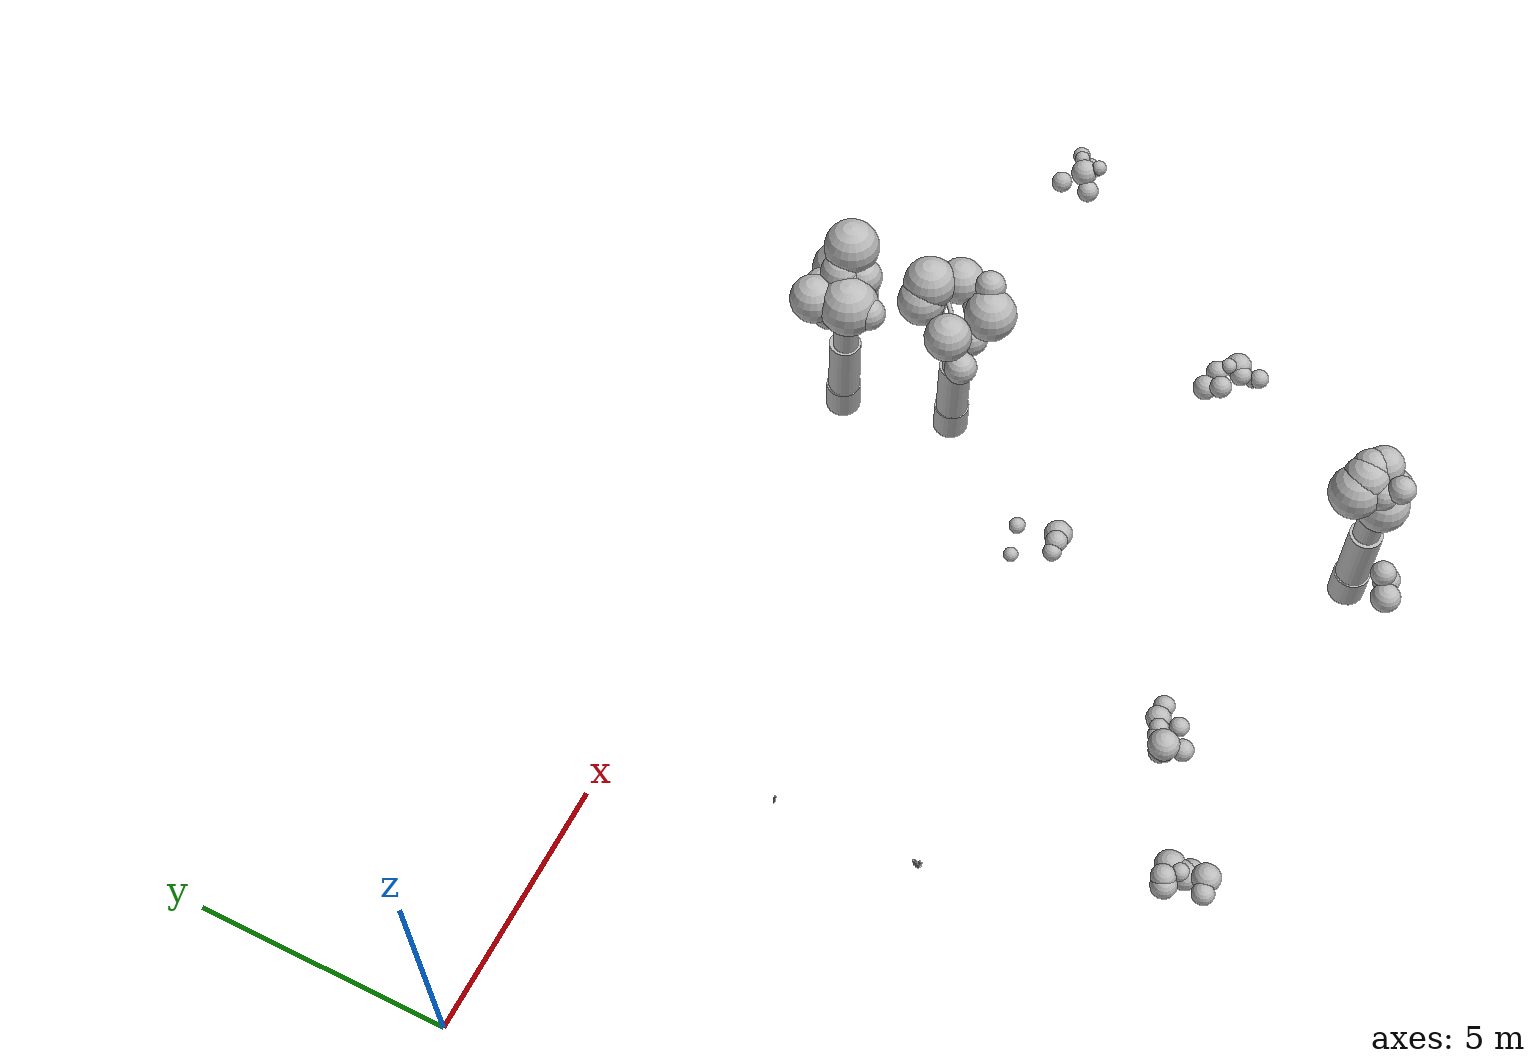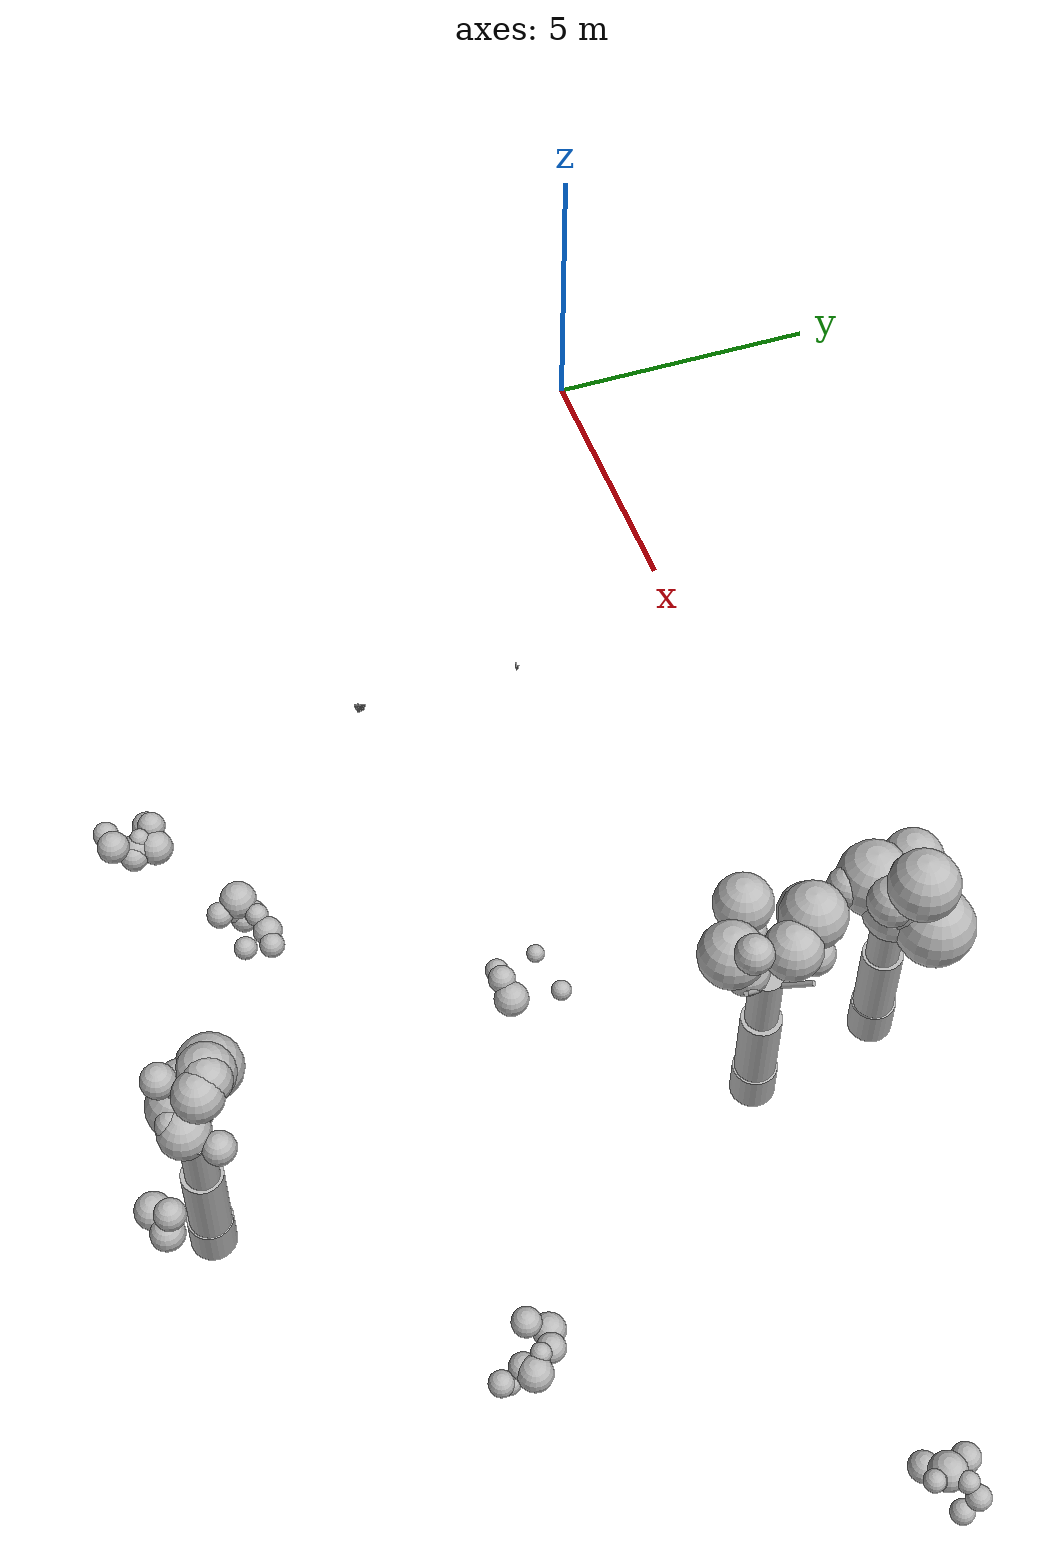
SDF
<sdf version="1.6">
 <world name="default">
  <model name="bush_13">
   <static>true</static>
   <pose>15.1162 -0.2985 0 0 0 0</pose>
   <link name="trunk">
    <pose>0 0 1.5000 0 0 0</pose>
    <collision name="trunk_c">
     <geometry><cylinder><radius>0.3500</radius><length>3.0000</length></cylinder></geometry>
    </collision>
   </link>
   <link name="trunk_v0">
    <pose>0.0002 -0.0012 0.3100 0 0 0</pose>
    <visual name="trunk_v0_v">
     <geometry><cylinder><radius>0.3448</radius><length>0.6448</length></cylinder></geometry>
     <material>
      <script>
       <uri>model://bushfire/materials/scripts</uri>
       <uri>model://bushfire/materials/textures</uri>
       <name>Bushfire/CharBark</name>
      </script>
     </material>
    </visual>
   </link>
   <link name="trunk_v1">
    <pose>0.0015 -0.0085 1.2700 0 0 0</pose>
    <visual name="trunk_v1_v">
     <geometry><cylinder><radius>0.3150</radius><length>1.3520</length></cylinder></geometry>
     <material>
      <script>
       <uri>model://bushfire/materials/scripts</uri>
       <uri>model://bushfire/materials/textures</uri>
       <name>Bushfire/BarkSmooth</name>
      </script>
     </material>
    </visual>
   </link>
   <link name="trunk_v2">
    <pose>0.0038 -0.0215 2.4600 0 0 0</pose>
    <visual name="trunk_v2_v">
     <geometry><cylinder><radius>0.2520</radius><length>1.1232</length></cylinder></geometry>
     <material>
      <script>
       <uri>model://bushfire/materials/scripts</uri>
       <uri>model://bushfire/materials/textures</uri>
       <name>Bushfire/BarkSmooth</name>
      </script>
     </material>
    </visual>
   </link>
   <link name="branch0">
    <pose>-0.0726 0.1679 2.8235 0 0.6618 1.9788</pose>
    <visual name="branch0_v">
     <geometry><cylinder><radius>0.0363</radius><length>0.5955</length></cylinder></geometry>
     <material>
      <script>
       <uri>model://bushfire/materials/scripts</uri>
       <uri>model://bushfire/materials/textures</uri>
       <name>Bushfire/BarkSmooth</name>
      </script>
     </material>
    </visual>
   </link>
   <link name="branch1">
    <pose>-0.0848 -0.1940 3.0970 0 0.5664 4.3003</pose>
    <visual name="branch1_v">
     <geometry><cylinder><radius>0.0481</radius><length>0.7893</length></cylinder></geometry>
     <material>
      <script>
       <uri>model://bushfire/materials/scripts</uri>
       <uri>model://bushfire/materials/textures</uri>
       <name>Bushfire/BarkSmooth</name>
      </script>
     </material>
    </visual>
   </link>
   <link name="branch2">
    <pose>0.2132 0.0540 3.0831 0 0.5614 6.5312</pose>
    <visual name="branch2_v">
     <geometry><cylinder><radius>0.0449</radius><length>0.8262</length></cylinder></geometry>
     <material>
      <script>
       <uri>model://bushfire/materials/scripts</uri>
       <uri>model://bushfire/materials/textures</uri>
       <name>Bushfire/BarkSmooth</name>
      </script>
     </material>
    </visual>
   </link>
   <link name="foliage0">
    <pose>-0.1957 0.2616 2.9842 0 0 0</pose>
    <visual name="foliage0_v">
     <geometry><sphere><radius>0.3337</radius></sphere></geometry>
     <material>
      <script>
       <uri>model://bushfire/materials/scripts</uri>
       <uri>model://bushfire/materials/textures</uri>
       <name>Bushfire/Foliage2</name>
      </script>
     </material>
    </visual>
   </link>
   <link name="foliage1">
    <pose>0.0440 -0.1399 3.5114 0 0 0</pose>
    <visual name="foliage1_v">
     <geometry><sphere><radius>0.2488</radius></sphere></geometry>
     <material>
      <script>
       <uri>model://bushfire/materials/scripts</uri>
       <uri>model://bushfire/materials/textures</uri>
       <name>Bushfire/Foliage2</name>
      </script>
     </material>
    </visual>
   </link>
   <link name="foliage2">
    <pose>0.4319 0.2600 4.2798 0 0 0</pose>
    <visual name="foliage2_v">
     <geometry><sphere><radius>0.3731</radius></sphere></geometry>
     <material>
      <script>
       <uri>model://bushfire/materials/scripts</uri>
       <uri>model://bushfire/materials/textures</uri>
       <name>Bushfire/Foliage1</name>
      </script>
     </material>
    </visual>
   </link>
   <link name="foliage3">
    <pose>-0.4467 0.4702 3.5678 0 0 0</pose>
    <visual name="foliage3_v">
     <geometry><sphere><radius>0.4695</radius></sphere></geometry>
     <material>
      <script>
       <uri>model://bushfire/materials/scripts</uri>
       <uri>model://bushfire/materials/textures</uri>
       <name>Bushfire/Foliage2</name>
      </script>
     </material>
    </visual>
   </link>
   <link name="foliage4">
    <pose>-0.3095 -0.2070 3.5656 0 0 0</pose>
    <visual name="foliage4_v">
     <geometry><sphere><radius>0.5819</radius></sphere></geometry>
     <material>
      <script>
       <uri>model://bushfire/materials/scripts</uri>
       <uri>model://bushfire/materials/textures</uri>
       <name>Bushfire/Foliage2</name>
      </script>
     </material>
    </visual>
   </link>
   <link name="foliage5">
    <pose>0.6180 0.3659 3.3322 0 0 0</pose>
    <visual name="foliage5_v">
     <geometry><sphere><radius>0.6044</radius></sphere></geometry>
     <material>
      <script>
       <uri>model://bushfire/materials/scripts</uri>
       <uri>model://bushfire/materials/textures</uri>
       <name>Bushfire/Foliage1</name>
      </script>
     </material>
    </visual>
   </link>
   <link name="foliage6">
    <pose>0.1385 0.1607 3.8613 0 0 0</pose>
    <visual name="foliage6_v">
     <geometry><sphere><radius>0.4233</radius></sphere></geometry>
     <material>
      <script>
       <uri>model://bushfire/materials/scripts</uri>
       <uri>model://bushfire/materials/textures</uri>
       <name>Bushfire/Foliage2</name>
      </script>
     </material>
    </visual>
   </link>
   <link name="foliage7">
    <pose>0.1670 -0.0960 3.3604 0 0 0</pose>
    <visual name="foliage7_v">
     <geometry><sphere><radius>0.4738</radius></sphere></geometry>
     <material>
      <script>
       <uri>model://bushfire/materials/scripts</uri>
       <uri>model://bushfire/materials/textures</uri>
       <name>Bushfire/Foliage0</name>
      </script>
     </material>
    </visual>
   </link>
   <link name="foliage8">
    <pose>0.3258 0.2349 3.6175 0 0 0</pose>
    <visual name="foliage8_v">
     <geometry><sphere><radius>0.3541</radius></sphere></geometry>
     <material>
      <script>
       <uri>model://bushfire/materials/scripts</uri>
       <uri>model://bushfire/materials/textures</uri>
       <name>Bushfire/Foliage0</name>
      </script>
     </material>
    </visual>
   </link>
   <link name="foliage9">
    <pose>0.1775 0.0627 3.7023 0 0 0</pose>
    <visual name="foliage9_v">
     <geometry><sphere><radius>0.4742</radius></sphere></geometry>
     <material>
      <script>
       <uri>model://bushfire/materials/scripts</uri>
       <uri>model://bushfire/materials/textures</uri>
       <name>Bushfire/Foliage2</name>
      </script>
     </material>
    </visual>
   </link>
   <link name="foliage10">
    <pose>-0.3111 -0.6412 3.5646 0 0 0</pose>
    <visual name="foliage10_v">
     <geometry><sphere><radius>0.3106</radius></sphere></geometry>
     <material>
      <script>
       <uri>model://bushfire/materials/scripts</uri>
       <uri>model://bushfire/materials/textures</uri>
       <name>Bushfire/Foliage2</name>
      </script>
     </material>
    </visual>
   </link>
   <link name="foliage11">
    <pose>0.2761 -0.2068 3.7817 0 0 0</pose>
    <visual name="foliage11_v">
     <geometry><sphere><radius>0.3876</radius></sphere></geometry>
     <material>
      <script>
       <uri>model://bushfire/materials/scripts</uri>
       <uri>model://bushfire/materials/textures</uri>
       <name>Bushfire/Foliage0</name>
      </script>
     </material>
    </visual>
   </link>
   <link name="foliage12">
    <pose>-0.0543 0.4737 3.4851 0 0 0</pose>
    <visual name="foliage12_v">
     <geometry><sphere><radius>0.3783</radius></sphere></geometry>
     <material>
      <script>
       <uri>model://bushfire/materials/scripts</uri>
       <uri>model://bushfire/materials/textures</uri>
       <name>Bushfire/Foliage0</name>
      </script>
     </material>
    </visual>
   </link>
   <link name="foliage13">
    <pose>0.1938 0.0497 3.6536 0 0 0</pose>
    <visual name="foliage13_v">
     <geometry><sphere><radius>0.5138</radius></sphere></geometry>
     <material>
      <script>
       <uri>model://bushfire/materials/scripts</uri>
       <uri>model://bushfire/materials/textures</uri>
       <name>Bushfire/Foliage1</name>
      </script>
     </material>
    </visual>
   </link>
   <link name="foliage14">
    <pose>0.4787 0.1251 4.2866 0 0 0</pose>
    <visual name="foliage14_v">
     <geometry><sphere><radius>0.5354</radius></sphere></geometry>
     <material>
      <script>
       <uri>model://bushfire/materials/scripts</uri>
       <uri>model://bushfire/materials/textures</uri>
       <name>Bushfire/Foliage0</name>
      </script>
     </material>
    </visual>
   </link>
   <link name="foliage15">
    <pose>0.2206 -0.0470 3.2311 0 0 0</pose>
    <visual name="foliage15_v">
     <geometry><sphere><radius>0.3343</radius></sphere></geometry>
     <material>
      <script>
       <uri>model://bushfire/materials/scripts</uri>
       <uri>model://bushfire/materials/textures</uri>
       <name>Bushfire/Foliage2</name>
      </script>
     </material>
    </visual>
   </link>
  </model>
  <model name="bush_24">
   <static>true</static>
   <pose>15.5931 -2.4865 0 0 0 0</pose>
   <link name="trunk">
    <pose>0 0 1.5000 0 0 0</pose>
    <collision name="trunk_c">
     <geometry><cylinder><radius>0.3500</radius><length>3.0000</length></cylinder></geometry>
    </collision>
   </link>
   <link name="trunk_v0">
    <pose>-0.0018 0.0003 0.3100 0 0 0</pose>
    <visual name="trunk_v0_v">
     <geometry><cylinder><radius>0.3448</radius><length>0.6448</length></cylinder></geometry>
     <material>
      <script>
       <uri>model://bushfire/materials/scripts</uri>
       <uri>model://bushfire/materials/textures</uri>
       <name>Bushfire/CharBark</name>
      </script>
     </material>
    </visual>
   </link>
   <link name="trunk_v1">
    <pose>-0.0129 0.0025 1.2700 0 0 0</pose>
    <visual name="trunk_v1_v">
     <geometry><cylinder><radius>0.3150</radius><length>1.3520</length></cylinder></geometry>
     <material>
      <script>
       <uri>model://bushfire/materials/scripts</uri>
       <uri>model://bushfire/materials/textures</uri>
       <name>Bushfire/BarkStringy</name>
      </script>
     </material>
    </visual>
   </link>
   <link name="trunk_v2">
    <pose>-0.0326 0.0063 2.4600 0 0 0</pose>
    <visual name="trunk_v2_v">
     <geometry><cylinder><radius>0.2520</radius><length>1.1232</length></cylinder></geometry>
     <material>
      <script>
       <uri>model://bushfire/materials/scripts</uri>
       <uri>model://bushfire/materials/textures</uri>
       <name>Bushfire/BarkStringy</name>
      </script>
     </material>
    </visual>
   </link>
   <link name="branch0">
    <pose>0.1919 -0.2628 3.1024 0 0.7669 5.3431</pose>
    <visual name="branch0_v">
     <geometry><cylinder><radius>0.0389</radius><length>0.9378</length></cylinder></geometry>
     <material>
      <script>
       <uri>model://bushfire/materials/scripts</uri>
       <uri>model://bushfire/materials/textures</uri>
       <name>Bushfire/BarkStringy</name>
      </script>
     </material>
    </visual>
   </link>
   <link name="branch1">
    <pose>0.2322 0.2486 3.0614 0 0.9257 7.1027</pose>
    <visual name="branch1_v">
     <geometry><cylinder><radius>0.0434</radius><length>0.8514</length></cylinder></geometry>
     <material>
      <script>
       <uri>model://bushfire/materials/scripts</uri>
       <uri>model://bushfire/materials/textures</uri>
       <name>Bushfire/BarkStringy</name>
      </script>
     </material>
    </visual>
   </link>
   <link name="branch2">
    <pose>-0.1826 0.1654 3.1395 0 0.6119 8.6887</pose>
    <visual name="branch2_v">
     <geometry><cylinder><radius>0.0546</radius><length>0.8578</length></cylinder></geometry>
     <material>
      <script>
       <uri>model://bushfire/materials/scripts</uri>
       <uri>model://bushfire/materials/textures</uri>
       <name>Bushfire/BarkStringy</name>
      </script>
     </material>
    </visual>
   </link>
   <link name="branch3">
    <pose>-0.2364 -0.0654 2.7770 0 0.8233 9.6947</pose>
    <visual name="branch3_v">
     <geometry><cylinder><radius>0.0309</radius><length>0.6689</length></cylinder></geometry>
     <material>
      <script>
       <uri>model://bushfire/materials/scripts</uri>
       <uri>model://bushfire/materials/textures</uri>
       <name>Bushfire/BarkStringy</name>
      </script>
     </material>
    </visual>
   </link>
   <link name="foliage0">
    <pose>-0.0300 -0.6105 3.8879 0 0 0</pose>
    <visual name="foliage0_v">
     <geometry><sphere><radius>0.5035</radius></sphere></geometry>
     <material>
      <script>
       <uri>model://bushfire/materials/scripts</uri>
       <uri>model://bushfire/materials/textures</uri>
       <name>Bushfire/Foliage0</name>
      </script>
     </material>
    </visual>
   </link>
   <link name="foliage1">
    <pose>0.4165 0.2412 4.0271 0 0 0</pose>
    <visual name="foliage1_v">
     <geometry><sphere><radius>0.2273</radius></sphere></geometry>
     <material>
      <script>
       <uri>model://bushfire/materials/scripts</uri>
       <uri>model://bushfire/materials/textures</uri>
       <name>Bushfire/Foliage0</name>
      </script>
     </material>
    </visual>
   </link>
   <link name="foliage2">
    <pose>-0.3255 0.6864 3.9200 0 0 0</pose>
    <visual name="foliage2_v">
     <geometry><sphere><radius>0.4615</radius></sphere></geometry>
     <material>
      <script>
       <uri>model://bushfire/materials/scripts</uri>
       <uri>model://bushfire/materials/textures</uri>
       <name>Bushfire/Foliage2</name>
      </script>
     </material>
    </visual>
   </link>
   <link name="foliage3">
    <pose>-0.8355 -0.0968 3.8327 0 0 0</pose>
    <visual name="foliage3_v">
     <geometry><sphere><radius>0.4533</radius></sphere></geometry>
     <material>
      <script>
       <uri>model://bushfire/materials/scripts</uri>
       <uri>model://bushfire/materials/textures</uri>
       <name>Bushfire/Foliage0</name>
      </script>
     </material>
    </visual>
   </link>
   <link name="foliage4">
    <pose>0.0361 -0.2560 3.8499 0 0 0</pose>
    <visual name="foliage4_v">
     <geometry><sphere><radius>0.2256</radius></sphere></geometry>
     <material>
      <script>
       <uri>model://bushfire/materials/scripts</uri>
       <uri>model://bushfire/materials/textures</uri>
       <name>Bushfire/Foliage0</name>
      </script>
     </material>
    </visual>
   </link>
   <link name="foliage5">
    <pose>0.0538 0.6664 3.4039 0 0 0</pose>
    <visual name="foliage5_v">
     <geometry><sphere><radius>0.3242</radius></sphere></geometry>
     <material>
      <script>
       <uri>model://bushfire/materials/scripts</uri>
       <uri>model://bushfire/materials/textures</uri>
       <name>Bushfire/Foliage1</name>
      </script>
     </material>
    </visual>
   </link>
   <link name="foliage6">
    <pose>-0.5784 -0.0611 3.4863 0 0 0</pose>
    <visual name="foliage6_v">
     <geometry><sphere><radius>0.2374</radius></sphere></geometry>
     <material>
      <script>
       <uri>model://bushfire/materials/scripts</uri>
       <uri>model://bushfire/materials/textures</uri>
       <name>Bushfire/Foliage0</name>
      </script>
     </material>
    </visual>
   </link>
   <link name="foliage7">
    <pose>-0.1369 -0.2899 3.1350 0 0 0</pose>
    <visual name="foliage7_v">
     <geometry><sphere><radius>0.3531</radius></sphere></geometry>
     <material>
      <script>
       <uri>model://bushfire/materials/scripts</uri>
       <uri>model://bushfire/materials/textures</uri>
       <name>Bushfire/Foliage0</name>
      </script>
     </material>
    </visual>
   </link>
   <link name="foliage8">
    <pose>0.1678 -0.5265 3.8139 0 0 0</pose>
    <visual name="foliage8_v">
     <geometry><sphere><radius>0.2238</radius></sphere></geometry>
     <material>
      <script>
       <uri>model://bushfire/materials/scripts</uri>
       <uri>model://bushfire/materials/textures</uri>
       <name>Bushfire/Foliage2</name>
      </script>
     </material>
    </visual>
   </link>
   <link name="foliage9">
    <pose>0.3143 0.1633 4.1014 0 0 0</pose>
    <visual name="foliage9_v">
     <geometry><sphere><radius>0.4452</radius></sphere></geometry>
     <material>
      <script>
       <uri>model://bushfire/materials/scripts</uri>
       <uri>model://bushfire/materials/textures</uri>
       <name>Bushfire/Foliage0</name>
      </script>
     </material>
    </visual>
   </link>
   <link name="foliage10">
    <pose>-0.0780 0.6354 4.2096 0 0 0</pose>
    <visual name="foliage10_v">
     <geometry><sphere><radius>0.5065</radius></sphere></geometry>
     <material>
      <script>
       <uri>model://bushfire/materials/scripts</uri>
       <uri>model://bushfire/materials/textures</uri>
       <name>Bushfire/Foliage2</name>
      </script>
     </material>
    </visual>
   </link>
   <link name="foliage11">
    <pose>-0.7476 -0.3766 2.9589 0 0 0</pose>
    <visual name="foliage11_v">
     <geometry><sphere><radius>0.3177</radius></sphere></geometry>
     <material>
      <script>
       <uri>model://bushfire/materials/scripts</uri>
       <uri>model://bushfire/materials/textures</uri>
       <name>Bushfire/Foliage2</name>
      </script>
     </material>
    </visual>
   </link>
   <link name="foliage12">
    <pose>0.3009 -0.4328 4.2766 0 0 0</pose>
    <visual name="foliage12_v">
     <geometry><sphere><radius>0.2948</radius></sphere></geometry>
     <material>
      <script>
       <uri>model://bushfire/materials/scripts</uri>
       <uri>model://bushfire/materials/textures</uri>
       <name>Bushfire/Foliage0</name>
      </script>
     </material>
    </visual>
   </link>
  </model>
  <model name="bush_29">
   <static>true</static>
   <pose>15.3964 -10.9839 0 0 0 0</pose>
   <link name="trunk">
    <pose>0 0 1.5000 0 0 0</pose>
    <collision name="trunk_c">
     <geometry><cylinder><radius>0.3500</radius><length>3.0000</length></cylinder></geometry>
    </collision>
   </link>
   <link name="trunk_v0">
    <pose>0.0012 0.0006 0.3100 0 0 0</pose>
    <visual name="trunk_v0_v">
     <geometry><cylinder><radius>0.3448</radius><length>0.6448</length></cylinder></geometry>
     <material>
      <script>
       <uri>model://bushfire/materials/scripts</uri>
       <uri>model://bushfire/materials/textures</uri>
       <name>Bushfire/CharBark</name>
      </script>
     </material>
    </visual>
   </link>
   <link name="trunk_v1">
    <pose>0.0084 0.0046 1.2700 0 0 0</pose>
    <visual name="trunk_v1_v">
     <geometry><cylinder><radius>0.3150</radius><length>1.3520</length></cylinder></geometry>
     <material>
      <script>
       <uri>model://bushfire/materials/scripts</uri>
       <uri>model://bushfire/materials/textures</uri>
       <name>Bushfire/BarkSmooth</name>
      </script>
     </material>
    </visual>
   </link>
   <link name="trunk_v2">
    <pose>0.0211 0.0117 2.4600 0 0 0</pose>
    <visual name="trunk_v2_v">
     <geometry><cylinder><radius>0.2520</radius><length>1.1232</length></cylinder></geometry>
     <material>
      <script>
       <uri>model://bushfire/materials/scripts</uri>
       <uri>model://bushfire/materials/textures</uri>
       <name>Bushfire/BarkSmooth</name>
      </script>
     </material>
    </visual>
   </link>
   <link name="branch0">
    <pose>-0.0984 -0.2188 2.9731 0 0.6850 4.2897</pose>
    <visual name="branch0_v">
     <geometry><cylinder><radius>0.0302</radius><length>0.7585</length></cylinder></geometry>
     <material>
      <script>
       <uri>model://bushfire/materials/scripts</uri>
       <uri>model://bushfire/materials/textures</uri>
       <name>Bushfire/BarkSmooth</name>
      </script>
     </material>
    </visual>
   </link>
   <link name="branch1">
    <pose>0.2422 -0.0072 3.0563 0 0.6133 6.2534</pose>
    <visual name="branch1_v">
     <geometry><cylinder><radius>0.0356</radius><length>0.8418</length></cylinder></geometry>
     <material>
      <script>
       <uri>model://bushfire/materials/scripts</uri>
       <uri>model://bushfire/materials/textures</uri>
       <name>Bushfire/BarkSmooth</name>
      </script>
     </material>
    </visual>
   </link>
   <link name="branch2">
    <pose>-0.1653 0.1581 3.1631 0 0.6104 8.6614</pose>
    <visual name="branch2_v">
     <geometry><cylinder><radius>0.0349</radius><length>0.7982</length></cylinder></geometry>
     <material>
      <script>
       <uri>model://bushfire/materials/scripts</uri>
       <uri>model://bushfire/materials/textures</uri>
       <name>Bushfire/BarkSmooth</name>
      </script>
     </material>
    </visual>
   </link>
   <link name="foliage0">
    <pose>-0.2742 0.0106 3.4541 0 0 0</pose>
    <visual name="foliage0_v">
     <geometry><sphere><radius>0.3002</radius></sphere></geometry>
     <material>
      <script>
       <uri>model://bushfire/materials/scripts</uri>
       <uri>model://bushfire/materials/textures</uri>
       <name>Bushfire/Foliage2</name>
      </script>
     </material>
    </visual>
   </link>
   <link name="foliage1">
    <pose>-0.1405 0.3332 4.0860 0 0 0</pose>
    <visual name="foliage1_v">
     <geometry><sphere><radius>0.3589</radius></sphere></geometry>
     <material>
      <script>
       <uri>model://bushfire/materials/scripts</uri>
       <uri>model://bushfire/materials/textures</uri>
       <name>Bushfire/Foliage1</name>
      </script>
     </material>
    </visual>
   </link>
   <link name="foliage2">
    <pose>-0.5254 0.4366 3.7734 0 0 0</pose>
    <visual name="foliage2_v">
     <geometry><sphere><radius>0.4893</radius></sphere></geometry>
     <material>
      <script>
       <uri>model://bushfire/materials/scripts</uri>
       <uri>model://bushfire/materials/textures</uri>
       <name>Bushfire/Foliage2</name>
      </script>
     </material>
    </visual>
   </link>
   <link name="foliage3">
    <pose>-0.0746 -0.0782 3.2081 0 0 0</pose>
    <visual name="foliage3_v">
     <geometry><sphere><radius>0.2320</radius></sphere></geometry>
     <material>
      <script>
       <uri>model://bushfire/materials/scripts</uri>
       <uri>model://bushfire/materials/textures</uri>
       <name>Bushfire/Foliage1</name>
      </script>
     </material>
    </visual>
   </link>
   <link name="foliage4">
    <pose>0.1306 -0.1315 3.3942 0 0 0</pose>
    <visual name="foliage4_v">
     <geometry><sphere><radius>0.3885</radius></sphere></geometry>
     <material>
      <script>
       <uri>model://bushfire/materials/scripts</uri>
       <uri>model://bushfire/materials/textures</uri>
       <name>Bushfire/Foliage1</name>
      </script>
     </material>
    </visual>
   </link>
   <link name="foliage5">
    <pose>-0.4121 -0.0134 3.8503 0 0 0</pose>
    <visual name="foliage5_v">
     <geometry><sphere><radius>0.2997</radius></sphere></geometry>
     <material>
      <script>
       <uri>model://bushfire/materials/scripts</uri>
       <uri>model://bushfire/materials/textures</uri>
       <name>Bushfire/Foliage1</name>
      </script>
     </material>
    </visual>
   </link>
   <link name="foliage6">
    <pose>-0.2959 -0.0834 3.3766 0 0 0</pose>
    <visual name="foliage6_v">
     <geometry><sphere><radius>0.4913</radius></sphere></geometry>
     <material>
      <script>
       <uri>model://bushfire/materials/scripts</uri>
       <uri>model://bushfire/materials/textures</uri>
       <name>Bushfire/Foliage1</name>
      </script>
     </material>
    </visual>
   </link>
   <link name="foliage7">
    <pose>0.4713 0.2674 3.3077 0 0 0</pose>
    <visual name="foliage7_v">
     <geometry><sphere><radius>0.2475</radius></sphere></geometry>
     <material>
      <script>
       <uri>model://bushfire/materials/scripts</uri>
       <uri>model://bushfire/materials/textures</uri>
       <name>Bushfire/Foliage0</name>
      </script>
     </material>
    </visual>
   </link>
   <link name="foliage8">
    <pose>0.0318 0.1559 4.0455 0 0 0</pose>
    <visual name="foliage8_v">
     <geometry><sphere><radius>0.3783</radius></sphere></geometry>
     <material>
      <script>
       <uri>model://bushfire/materials/scripts</uri>
       <uri>model://bushfire/materials/textures</uri>
       <name>Bushfire/Foliage2</name>
      </script>
     </material>
    </visual>
   </link>
   <link name="foliage9">
    <pose>-0.3480 -0.2998 4.0862 0 0 0</pose>
    <visual name="foliage9_v">
     <geometry><sphere><radius>0.2570</radius></sphere></geometry>
     <material>
      <script>
       <uri>model://bushfire/materials/scripts</uri>
       <uri>model://bushfire/materials/textures</uri>
       <name>Bushfire/Foliage2</name>
      </script>
     </material>
    </visual>
   </link>
   <link name="foliage10">
    <pose>0.0445 -0.2582 3.5078 0 0 0</pose>
    <visual name="foliage10_v">
     <geometry><sphere><radius>0.2538</radius></sphere></geometry>
     <material>
      <script>
       <uri>model://bushfire/materials/scripts</uri>
       <uri>model://bushfire/materials/textures</uri>
       <name>Bushfire/Foliage1</name>
      </script>
     </material>
    </visual>
   </link>
   <link name="foliage11">
    <pose>-0.3313 0.3517 3.9764 0 0 0</pose>
    <visual name="foliage11_v">
     <geometry><sphere><radius>0.4338</radius></sphere></geometry>
     <material>
      <script>
       <uri>model://bushfire/materials/scripts</uri>
       <uri>model://bushfire/materials/textures</uri>
       <name>Bushfire/Foliage0</name>
      </script>
     </material>
    </visual>
   </link>
  </model>
  <model name="scrub">
   <static>true</static>
   <link name="scrub0_0">
    <pose>12.9685 -5.7407 1.0958 0 0 0</pose>
    <visual name="scrub0_0_v">
     <geometry><sphere><radius>0.1813</radius></sphere></geometry>
     <material>
      <script>
       <uri>model://bushfire/materials/scripts</uri>
       <uri>model://bushfire/materials/textures</uri>
       <name>Bushfire/Foliage0</name>
      </script>
     </material>
    </visual>
   </link>
   <link name="scrub0_1">
    <pose>13.4334 -4.8427 0.7613 0 0 0</pose>
    <visual name="scrub0_1_v">
     <geometry><sphere><radius>0.1591</radius></sphere></geometry>
     <material>
      <script>
       <uri>model://bushfire/materials/scripts</uri>
       <uri>model://bushfire/materials/textures</uri>
       <name>Bushfire/Foliage0</name>
      </script>
     </material>
    </visual>
   </link>
   <link name="scrub0_2">
    <pose>13.1817 -5.7313 1.1562 0 0 0</pose>
    <visual name="scrub0_2_v">
     <geometry><sphere><radius>0.2147</radius></sphere></geometry>
     <material>
      <script>
       <uri>model://bushfire/materials/scripts</uri>
       <uri>model://bushfire/materials/textures</uri>
       <name>Bushfire/Foliage0</name>
      </script>
     </material>
    </visual>
   </link>
   <link name="scrub0_3">
    <pose>13.4412 -5.6445 0.8764 0 0 0</pose>
    <visual name="scrub0_3_v">
     <geometry><sphere><radius>0.1794</radius></sphere></geometry>
     <material>
      <script>
       <uri>model://bushfire/materials/scripts</uri>
       <uri>model://bushfire/materials/textures</uri>
       <name>Bushfire/Foliage1</name>
      </script>
     </material>
    </visual>
   </link>
   <link name="scrub0_4">
    <pose>13.4622 -5.6712 0.9783 0 0 0</pose>
    <visual name="scrub0_4_v">
     <geometry><sphere><radius>0.2730</radius></sphere></geometry>
     <material>
      <script>
       <uri>model://bushfire/materials/scripts</uri>
       <uri>model://bushfire/materials/textures</uri>
       <name>Bushfire/Foliage1</name>
      </script>
     </material>
    </visual>
   </link>
   <link name="scrub0_5">
    <pose>12.7146 -5.0158 0.8529 0 0 0</pose>
    <visual name="scrub0_5_v">
     <geometry><sphere><radius>0.1425</radius></sphere></geometry>
     <material>
      <script>
       <uri>model://bushfire/materials/scripts</uri>
       <uri>model://bushfire/materials/textures</uri>
       <name>Bushfire/Foliage2</name>
      </script>
     </material>
    </visual>
   </link>
   <link name="scrub5_0">
    <pose>10.8780 -9.2325 0.4714 0 0 0</pose>
    <visual name="scrub5_0_v">
     <geometry><sphere><radius>0.1855</radius></sphere></geometry>
     <material>
      <script>
       <uri>model://bushfire/materials/scripts</uri>
       <uri>model://bushfire/materials/textures</uri>
       <name>Bushfire/Foliage0</name>
      </script>
     </material>
    </visual>
   </link>
   <link name="scrub5_1">
    <pose>11.0687 -8.8394 0.6368 0 0 0</pose>
    <visual name="scrub5_1_v">
     <geometry><sphere><radius>0.2001</radius></sphere></geometry>
     <material>
      <script>
       <uri>model://bushfire/materials/scripts</uri>
       <uri>model://bushfire/materials/textures</uri>
       <name>Bushfire/Foliage0</name>
      </script>
     </material>
    </visual>
   </link>
   <link name="scrub5_2">
    <pose>10.1990 -9.1403 0.8445 0 0 0</pose>
    <visual name="scrub5_2_v">
     <geometry><sphere><radius>0.2962</radius></sphere></geometry>
     <material>
      <script>
       <uri>model://bushfire/materials/scripts</uri>
       <uri>model://bushfire/materials/textures</uri>
       <name>Bushfire/Foliage1</name>
      </script>
     </material>
    </visual>
   </link>
   <link name="scrub5_3">
    <pose>10.5241 -8.9277 0.7675 0 0 0</pose>
    <visual name="scrub5_3_v">
     <geometry><sphere><radius>0.1838</radius></sphere></geometry>
     <material>
      <script>
       <uri>model://bushfire/materials/scripts</uri>
       <uri>model://bushfire/materials/textures</uri>
       <name>Bushfire/Foliage2</name>
      </script>
     </material>
    </visual>
   </link>
   <link name="scrub5_4">
    <pose>10.7863 -8.8336 0.6380 0 0 0</pose>
    <visual name="scrub5_4_v">
     <geometry><sphere><radius>0.2347</radius></sphere></geometry>
     <material>
      <script>
       <uri>model://bushfire/materials/scripts</uri>
       <uri>model://bushfire/materials/textures</uri>
       <name>Bushfire/Foliage2</name>
      </script>
     </material>
    </visual>
   </link>
   <link name="scrub5_5">
    <pose>10.2185 -9.1954 0.5223 0 0 0</pose>
    <visual name="scrub5_5_v">
     <geometry><sphere><radius>0.1659</radius></sphere></geometry>
     <material>
      <script>
       <uri>model://bushfire/materials/scripts</uri>
       <uri>model://bushfire/materials/textures</uri>
       <name>Bushfire/Foliage1</name>
      </script>
     </material>
    </visual>
   </link>
   <link name="scrub5_6">
    <pose>10.2792 -9.0917 0.4145 0 0 0</pose>
    <visual name="scrub5_6_v">
     <geometry><sphere><radius>0.2191</radius></sphere></geometry>
     <material>
      <script>
       <uri>model://bushfire/materials/scripts</uri>
       <uri>model://bushfire/materials/textures</uri>
       <name>Bushfire/Foliage1</name>
      </script>
     </material>
    </visual>
   </link>
   <link name="scrub5_7">
    <pose>10.4069 -8.9474 0.7193 0 0 0</pose>
    <visual name="scrub5_7_v">
     <geometry><sphere><radius>0.1799</radius></sphere></geometry>
     <material>
      <script>
       <uri>model://bushfire/materials/scripts</uri>
       <uri>model://bushfire/materials/textures</uri>
       <name>Bushfire/Foliage2</name>
      </script>
     </material>
    </visual>
   </link>
   <link name="scrub5_8">
    <pose>10.3094 -9.4792 0.7338 0 0 0</pose>
    <visual name="scrub5_8_v">
     <geometry><sphere><radius>0.2100</radius></sphere></geometry>
     <material>
      <script>
       <uri>model://bushfire/materials/scripts</uri>
       <uri>model://bushfire/materials/textures</uri>
       <name>Bushfire/Foliage0</name>
      </script>
     </material>
    </visual>
   </link>
   <link name="scrub31_0">
    <pose>22.1829 -2.7228 0.5158 0 0 0</pose>
    <visual name="scrub31_0_v">
     <geometry><sphere><radius>0.2241</radius></sphere></geometry>
     <material>
      <script>
       <uri>model://bushfire/materials/scripts</uri>
       <uri>model://bushfire/materials/textures</uri>
       <name>Bushfire/Foliage2</name>
      </script>
     </material>
    </visual>
   </link>
   <link name="scrub31_1">
    <pose>22.5491 -2.7848 0.9212 0 0 0</pose>
    <visual name="scrub31_1_v">
     <geometry><sphere><radius>0.1612</radius></sphere></geometry>
     <material>
      <script>
       <uri>model://bushfire/materials/scripts</uri>
       <uri>model://bushfire/materials/textures</uri>
       <name>Bushfire/Foliage1</name>
      </script>
     </material>
    </visual>
   </link>
   <link name="scrub31_2">
    <pose>22.2348 -2.1018 0.4610 0 0 0</pose>
    <visual name="scrub31_2_v">
     <geometry><sphere><radius>0.2178</radius></sphere></geometry>
     <material>
      <script>
       <uri>model://bushfire/materials/scripts</uri>
       <uri>model://bushfire/materials/textures</uri>
       <name>Bushfire/Foliage0</name>
      </script>
     </material>
    </visual>
   </link>
   <link name="scrub31_3">
    <pose>22.6947 -2.3447 0.8565 0 0 0</pose>
    <visual name="scrub31_3_v">
     <geometry><sphere><radius>0.1603</radius></sphere></geometry>
     <material>
      <script>
       <uri>model://bushfire/materials/scripts</uri>
       <uri>model://bushfire/materials/textures</uri>
       <name>Bushfire/Foliage1</name>
      </script>
     </material>
    </visual>
   </link>
   <link name="scrub31_4">
    <pose>22.4331 -2.5110 0.7614 0 0 0</pose>
    <visual name="scrub31_4_v">
     <geometry><sphere><radius>0.2794</radius></sphere></geometry>
     <material>
      <script>
       <uri>model://bushfire/materials/scripts</uri>
       <uri>model://bushfire/materials/textures</uri>
       <name>Bushfire/Foliage1</name>
      </script>
     </material>
    </visual>
   </link>
   <link name="scrub31_5">
    <pose>22.5433 -2.7570 0.8898 0 0 0</pose>
    <visual name="scrub31_5_v">
     <geometry><sphere><radius>0.1562</radius></sphere></geometry>
     <material>
      <script>
       <uri>model://bushfire/materials/scripts</uri>
       <uri>model://bushfire/materials/textures</uri>
       <name>Bushfire/Foliage2</name>
      </script>
     </material>
    </visual>
   </link>
   <link name="scrub31_6">
    <pose>22.8895 -2.2670 0.7249 0 0 0</pose>
    <visual name="scrub31_6_v">
     <geometry><sphere><radius>0.1824</radius></sphere></geometry>
     <material>
      <script>
       <uri>model://bushfire/materials/scripts</uri>
       <uri>model://bushfire/materials/textures</uri>
       <name>Bushfire/Foliage0</name>
      </script>
     </material>
    </visual>
   </link>
   <link name="scrub31_7">
    <pose>22.9190 -2.4809 0.4683 0 0 0</pose>
    <visual name="scrub31_7_v">
     <geometry><sphere><radius>0.1767</radius></sphere></geometry>
     <material>
      <script>
       <uri>model://bushfire/materials/scripts</uri>
       <uri>model://bushfire/materials/textures</uri>
       <name>Bushfire/Foliage2</name>
      </script>
     </material>
    </visual>
   </link>
   <link name="scrub37_0">
    <pose>8.3173 -10.0857 0.2518 0 0 0</pose>
    <visual name="scrub37_0_v">
     <geometry><sphere><radius>0.2870</radius></sphere></geometry>
     <material>
      <script>
       <uri>model://bushfire/materials/scripts</uri>
       <uri>model://bushfire/materials/textures</uri>
       <name>Bushfire/Foliage2</name>
      </script>
     </material>
    </visual>
   </link>
   <link name="scrub37_1">
    <pose>8.1932 -10.3040 0.4229 0 0 0</pose>
    <visual name="scrub37_1_v">
     <geometry><sphere><radius>0.1713</radius></sphere></geometry>
     <material>
      <script>
       <uri>model://bushfire/materials/scripts</uri>
       <uri>model://bushfire/materials/textures</uri>
       <name>Bushfire/Foliage1</name>
      </script>
     </material>
    </visual>
   </link>
   <link name="scrub37_2">
    <pose>8.2643 -10.7580 0.4856 0 0 0</pose>
    <visual name="scrub37_2_v">
     <geometry><sphere><radius>0.2673</radius></sphere></geometry>
     <material>
      <script>
       <uri>model://bushfire/materials/scripts</uri>
       <uri>model://bushfire/materials/textures</uri>
       <name>Bushfire/Foliage1</name>
      </script>
     </material>
    </visual>
   </link>
   <link name="scrub37_3">
    <pose>8.3826 -10.4617 0.2340 0 0 0</pose>
    <visual name="scrub37_3_v">
     <geometry><sphere><radius>0.2322</radius></sphere></geometry>
     <material>
      <script>
       <uri>model://bushfire/materials/scripts</uri>
       <uri>model://bushfire/materials/textures</uri>
       <name>Bushfire/Foliage0</name>
      </script>
     </material>
    </visual>
   </link>
   <link name="scrub37_4">
    <pose>7.8807 -10.1243 0.2967 0 0 0</pose>
    <visual name="scrub37_4_v">
     <geometry><sphere><radius>0.2456</radius></sphere></geometry>
     <material>
      <script>
       <uri>model://bushfire/materials/scripts</uri>
       <uri>model://bushfire/materials/textures</uri>
       <name>Bushfire/Foliage2</name>
      </script>
     </material>
    </visual>
   </link>
   <link name="scrub37_5">
    <pose>7.9867 -10.0627 0.4133 0 0 0</pose>
    <visual name="scrub37_5_v">
     <geometry><sphere><radius>0.2307</radius></sphere></geometry>
     <material>
      <script>
       <uri>model://bushfire/materials/scripts</uri>
       <uri>model://bushfire/materials/textures</uri>
       <name>Bushfire/Foliage1</name>
      </script>
     </material>
    </visual>
   </link>
   <link name="scrub37_6">
    <pose>7.9602 -10.8130 0.4701 0 0 0</pose>
    <visual name="scrub37_6_v">
     <geometry><sphere><radius>0.2114</radius></sphere></geometry>
     <material>
      <script>
       <uri>model://bushfire/materials/scripts</uri>
       <uri>model://bushfire/materials/textures</uri>
       <name>Bushfire/Foliage1</name>
      </script>
     </material>
    </visual>
   </link>
   <link name="scrub37_7">
    <pose>8.2623 -10.3860 0.2332 0 0 0</pose>
    <visual name="scrub37_7_v">
     <geometry><sphere><radius>0.2782</radius></sphere></geometry>
     <material>
      <script>
       <uri>model://bushfire/materials/scripts</uri>
       <uri>model://bushfire/materials/textures</uri>
       <name>Bushfire/Foliage1</name>
      </script>
     </material>
    </visual>
   </link>
   <link name="scrub40_1">
    <pose>15.3640 -11.5322 1.0208 0 0 0</pose>
    <visual name="scrub40_1_v">
     <geometry><sphere><radius>0.2442</radius></sphere></geometry>
     <material>
      <script>
       <uri>model://bushfire/materials/scripts</uri>
       <uri>model://bushfire/materials/textures</uri>
       <name>Bushfire/Foliage1</name>
      </script>
     </material>
    </visual>
   </link>
   <link name="scrub40_3">
    <pose>15.0645 -11.7409 0.7324 0 0 0</pose>
    <visual name="scrub40_3_v">
     <geometry><sphere><radius>0.2859</radius></sphere></geometry>
     <material>
      <script>
       <uri>model://bushfire/materials/scripts</uri>
       <uri>model://bushfire/materials/textures</uri>
       <name>Bushfire/Foliage2</name>
      </script>
     </material>
    </visual>
   </link>
   <link name="scrub40_4">
    <pose>15.4708 -11.6297 0.6925 0 0 0</pose>
    <visual name="scrub40_4_v">
     <geometry><sphere><radius>0.2656</radius></sphere></geometry>
     <material>
      <script>
       <uri>model://bushfire/materials/scripts</uri>
       <uri>model://bushfire/materials/textures</uri>
       <name>Bushfire/Foliage0</name>
      </script>
     </material>
    </visual>
   </link>
   <link name="scrub51_0">
    <pose>18.8716 -6.9465 0.4961 0 0 0</pose>
    <visual name="scrub51_0_v">
     <geometry><sphere><radius>0.2201</radius></sphere></geometry>
     <material>
      <script>
       <uri>model://bushfire/materials/scripts</uri>
       <uri>model://bushfire/materials/textures</uri>
       <name>Bushfire/Foliage1</name>
      </script>
     </material>
    </visual>
   </link>
   <link name="scrub51_1">
    <pose>18.4411 -7.1660 0.6190 0 0 0</pose>
    <visual name="scrub51_1_v">
     <geometry><sphere><radius>0.2234</radius></sphere></geometry>
     <material>
      <script>
       <uri>model://bushfire/materials/scripts</uri>
       <uri>model://bushfire/materials/textures</uri>
       <name>Bushfire/Foliage1</name>
      </script>
     </material>
    </visual>
   </link>
   <link name="scrub51_2">
    <pose>19.1234 -7.7709 0.4305 0 0 0</pose>
    <visual name="scrub51_2_v">
     <geometry><sphere><radius>0.1956</radius></sphere></geometry>
     <material>
      <script>
       <uri>model://bushfire/materials/scripts</uri>
       <uri>model://bushfire/materials/textures</uri>
       <name>Bushfire/Foliage0</name>
      </script>
     </material>
    </visual>
   </link>
   <link name="scrub51_3">
    <pose>19.1719 -7.2878 0.5225 0 0 0</pose>
    <visual name="scrub51_3_v">
     <geometry><sphere><radius>0.2671</radius></sphere></geometry>
     <material>
      <script>
       <uri>model://bushfire/materials/scripts</uri>
       <uri>model://bushfire/materials/textures</uri>
       <name>Bushfire/Foliage1</name>
      </script>
     </material>
    </visual>
   </link>
   <link name="scrub51_4">
    <pose>18.9758 -7.1364 0.6688 0 0 0</pose>
    <visual name="scrub51_4_v">
     <geometry><sphere><radius>0.1566</radius></sphere></geometry>
     <material>
      <script>
       <uri>model://bushfire/materials/scripts</uri>
       <uri>model://bushfire/materials/textures</uri>
       <name>Bushfire/Foliage1</name>
      </script>
     </material>
    </visual>
   </link>
   <link name="scrub51_5">
    <pose>19.1193 -7.6552 0.3583 0 0 0</pose>
    <visual name="scrub51_5_v">
     <geometry><sphere><radius>0.1747</radius></sphere></geometry>
     <material>
      <script>
       <uri>model://bushfire/materials/scripts</uri>
       <uri>model://bushfire/materials/textures</uri>
       <name>Bushfire/Foliage0</name>
      </script>
     </material>
    </visual>
   </link>
   <link name="scrub51_6">
    <pose>19.0139 -7.4121 0.4834 0 0 0</pose>
    <visual name="scrub51_6_v">
     <geometry><sphere><radius>0.2187</radius></sphere></geometry>
     <material>
      <script>
       <uri>model://bushfire/materials/scripts</uri>
       <uri>model://bushfire/materials/textures</uri>
       <name>Bushfire/Foliage0</name>
      </script>
     </material>
    </visual>
   </link>
   <link name="scrub51_7">
    <pose>18.5203 -6.8514 0.3206 0 0 0</pose>
    <visual name="scrub51_7_v">
     <geometry><sphere><radius>0.2529</radius></sphere></geometry>
     <material>
      <script>
       <uri>model://bushfire/materials/scripts</uri>
       <uri>model://bushfire/materials/textures</uri>
       <name>Bushfire/Foliage1</name>
      </script>
     </material>
    </visual>
   </link>
  </model>
  <model name="tussocks">
   <static>true</static>
   <link name="tuft3_4">
    <pose>6.3936 -3.1474 0.0805 0 0.2472 5.8756</pose>
    <visual name="tuft3_4_v">
     <geometry><cylinder><radius>0.0156</radius><length>0.1749</length></cylinder></geometry>
     <material>
      <script>
       <uri>model://bushfire/materials/scripts</uri>
       <uri>model://bushfire/materials/textures</uri>
       <name>Bushfire/Foliage2</name>
      </script>
     </material>
    </visual>
   </link>
   <link name="tuft3_8">
    <pose>6.4267 -3.1282 0.0674 0 0.3070 0.1095</pose>
    <visual name="tuft3_8_v">
     <geometry><cylinder><radius>0.0145</radius><length>0.1466</length></cylinder></geometry>
     <material>
      <script>
       <uri>model://bushfire/materials/scripts</uri>
       <uri>model://bushfire/materials/textures</uri>
       <name>Bushfire/Tussock</name>
      </script>
     </material>
    </visual>
   </link>
   <link name="tuft31_1">
    <pose>6.3930 -6.0001 0.0625 0 0.2023 1.7260</pose>
    <visual name="tuft31_1_v">
     <geometry><cylinder><radius>0.0132</radius><length>0.1359</length></cylinder></geometry>
     <material>
      <script>
       <uri>model://bushfire/materials/scripts</uri>
       <uri>model://bushfire/materials/textures</uri>
       <name>Bushfire/Foliage2</name>
      </script>
     </material>
    </visual>
   </link>
   <link name="tuft31_2">
    <pose>6.4201 -6.0571 0.0513 0 0.2339 5.2790</pose>
    <visual name="tuft31_2_v">
     <geometry><cylinder><radius>0.0152</radius><length>0.1115</length></cylinder></geometry>
     <material>
      <script>
       <uri>model://bushfire/materials/scripts</uri>
       <uri>model://bushfire/materials/textures</uri>
       <name>Bushfire/Foliage2</name>
      </script>
     </material>
    </visual>
   </link>
   <link name="tuft31_3">
    <pose>6.3862 -6.0241 0.0725 0 0.2909 3.6075</pose>
    <visual name="tuft31_3_v">
     <geometry><cylinder><radius>0.0138</radius><length>0.1577</length></cylinder></geometry>
     <material>
      <script>
       <uri>model://bushfire/materials/scripts</uri>
       <uri>model://bushfire/materials/textures</uri>
       <name>Bushfire/Tussock</name>
      </script>
     </material>
    </visual>
   </link>
   <link name="tuft31_5">
    <pose>6.3897 -6.0383 0.0486 0 0.3243 4.3953</pose>
    <visual name="tuft31_5_v">
     <geometry><cylinder><radius>0.0177</radius><length>0.1056</length></cylinder></geometry>
     <material>
      <script>
       <uri>model://bushfire/materials/scripts</uri>
       <uri>model://bushfire/materials/textures</uri>
       <name>Bushfire/Tussock</name>
      </script>
     </material>
    </visual>
   </link>
   <link name="tuft31_6">
    <pose>6.3776 -6.0601 0.0600 0 0.3943 4.2908</pose>
    <visual name="tuft31_6_v">
     <geometry><cylinder><radius>0.0196</radius><length>0.1304</length></cylinder></geometry>
     <material>
      <script>
       <uri>model://bushfire/materials/scripts</uri>
       <uri>model://bushfire/materials/textures</uri>
       <name>Bushfire/Foliage2</name>
      </script>
     </material>
    </visual>
   </link>
   <link name="tuft31_8">
    <pose>6.4031 -5.9824 0.0630 0 0.3791 1.3811</pose>
    <visual name="tuft31_8_v">
     <geometry><cylinder><radius>0.0157</radius><length>0.1369</length></cylinder></geometry>
     <material>
      <script>
       <uri>model://bushfire/materials/scripts</uri>
       <uri>model://bushfire/materials/textures</uri>
       <name>Bushfire/Tussock</name>
      </script>
     </material>
    </visual>
   </link>
   <link name="tuft31_10">
    <pose>6.4261 -6.0295 0.0621 0 0.3021 5.9549</pose>
    <visual name="tuft31_10_v">
     <geometry><cylinder><radius>0.0160</radius><length>0.1350</length></cylinder></geometry>
     <material>
      <script>
       <uri>model://bushfire/materials/scripts</uri>
       <uri>model://bushfire/materials/textures</uri>
       <name>Bushfire/Tussock</name>
      </script>
     </material>
    </visual>
   </link>
   <link name="tuft31_11">
    <pose>6.4197 -5.9657 0.0546 0 0.3448 1.1530</pose>
    <visual name="tuft31_11_v">
     <geometry><cylinder><radius>0.0182</radius><length>0.1188</length></cylinder></geometry>
     <material>
      <script>
       <uri>model://bushfire/materials/scripts</uri>
       <uri>model://bushfire/materials/textures</uri>
       <name>Bushfire/Tussock</name>
      </script>
     </material>
    </visual>
   </link>
   <link name="tuft166_0">
    <pose>6.3960 -5.9980 0.0570 0 0.2111 0.4967</pose>
    <visual name="tuft166_0_v">
     <geometry><cylinder><radius>0.0162</radius><length>0.1238</length></cylinder></geometry>
     <material>
      <script>
       <uri>model://bushfire/materials/scripts</uri>
       <uri>model://bushfire/materials/textures</uri>
       <name>Bushfire/Tussock</name>
      </script>
     </material>
    </visual>
   </link>
   <link name="tuft166_2">
    <pose>6.4051 -6.0670 0.0785 0 0.2770 5.1462</pose>
    <visual name="tuft166_2_v">
     <geometry><cylinder><radius>0.0176</radius><length>0.1707</length></cylinder></geometry>
     <material>
      <script>
       <uri>model://bushfire/materials/scripts</uri>
       <uri>model://bushfire/materials/textures</uri>
       <name>Bushfire/Tussock</name>
      </script>
     </material>
    </visual>
   </link>
   <link name="tuft166_4">
    <pose>6.4327 -6.0298 0.0567 0 0.1644 5.9034</pose>
    <visual name="tuft166_4_v">
     <geometry><cylinder><radius>0.0143</radius><length>0.1233</length></cylinder></geometry>
     <material>
      <script>
       <uri>model://bushfire/materials/scripts</uri>
       <uri>model://bushfire/materials/textures</uri>
       <name>Bushfire/Foliage2</name>
      </script>
     </material>
    </visual>
   </link>
   <link name="tuft166_5">
    <pose>6.4094 -5.9416 0.0635 0 0.2316 1.1256</pose>
    <visual name="tuft166_5_v">
     <geometry><cylinder><radius>0.0195</radius><length>0.1380</length></cylinder></geometry>
     <material>
      <script>
       <uri>model://bushfire/materials/scripts</uri>
       <uri>model://bushfire/materials/textures</uri>
       <name>Bushfire/Tussock</name>
      </script>
     </material>
    </visual>
   </link>
   <link name="tuft166_6">
    <pose>6.4206 -6.0408 0.0840 0 0.1281 5.6291</pose>
    <visual name="tuft166_6_v">
     <geometry><cylinder><radius>0.0131</radius><length>0.1825</length></cylinder></geometry>
     <material>
      <script>
       <uri>model://bushfire/materials/scripts</uri>
       <uri>model://bushfire/materials/textures</uri>
       <name>Bushfire/Foliage2</name>
      </script>
     </material>
    </visual>
   </link>
  </model>
 </world>
</sdf>
